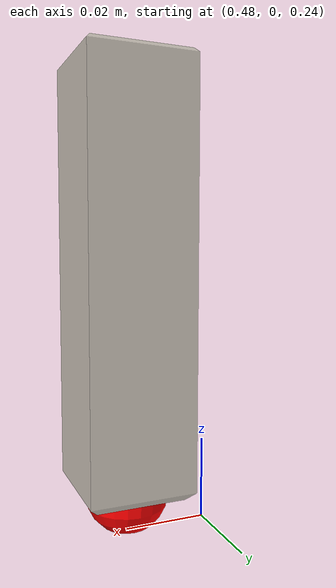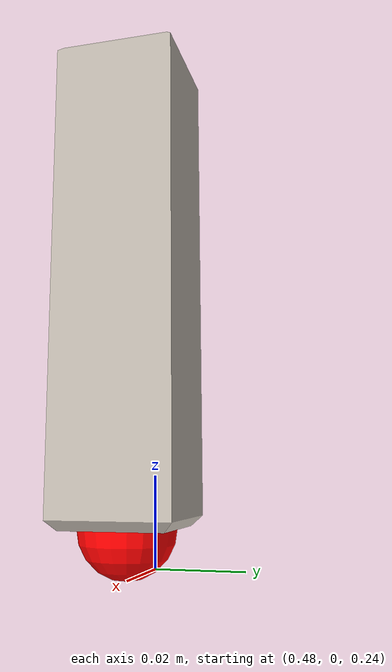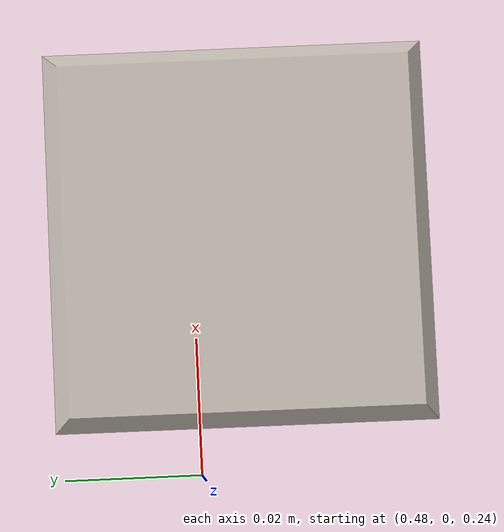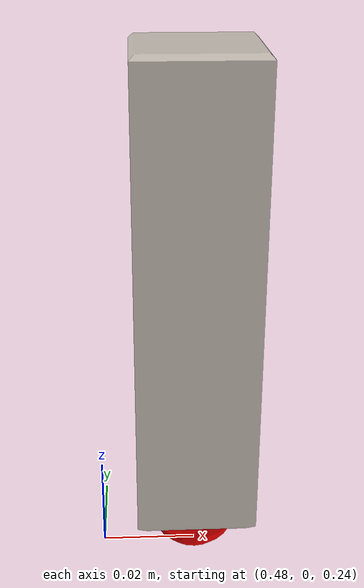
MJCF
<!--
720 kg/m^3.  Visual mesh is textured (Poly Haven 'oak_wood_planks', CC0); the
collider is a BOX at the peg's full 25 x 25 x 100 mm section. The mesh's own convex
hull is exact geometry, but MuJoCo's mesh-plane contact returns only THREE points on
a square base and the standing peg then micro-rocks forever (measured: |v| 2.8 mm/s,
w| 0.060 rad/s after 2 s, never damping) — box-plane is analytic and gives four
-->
<?xml version="1.0"?>
<mujoco model="peg">
  <compiler angle="radian" meshdir="assets" texturedir="assets"/>

  <asset>
    <texture name="peg_tex" type="2d" file="peg_tex.png"/>
    <material name="peg_mat" texture="peg_tex" specular="0.15" shininess="0.15"/>
    <mesh name="peg_vis" file="peg_vis.obj"/>
  </asset>

  <worldbody>
    <body name="peg" pos="0.5 0 0.3">
      <freejoint name="peg_joint"/>
      <inertial pos="0 0 0.00011" quat="0.707107 0 0.707107 0" mass="0.04483"
                diaginertia="4.655e-06 3.941e-05 3.941e-05"/>
      <geom name="peg_visual" type="mesh" mesh="peg_vis" material="peg_mat"
            contype="0" conaffinity="0" group="2" mass="0"/>
      <geom name="peg_geom" type="box" size="0.0125 0.0125 0.05" group="3"
            rgba="0.5 0.5 0.5 0.3" mass="0" condim="3" friction="1 0.03 0.003"
            contype="1" conaffinity="1" solref="0.01 1"/>
      <!-- Object site at the peg TIP (the functional end). -->
      <site name="object_site" pos="0 0 -0.05" size="0.01" rgba="1 0 0 1"/>
    </body>
  </worldbody>
</mujoco>
